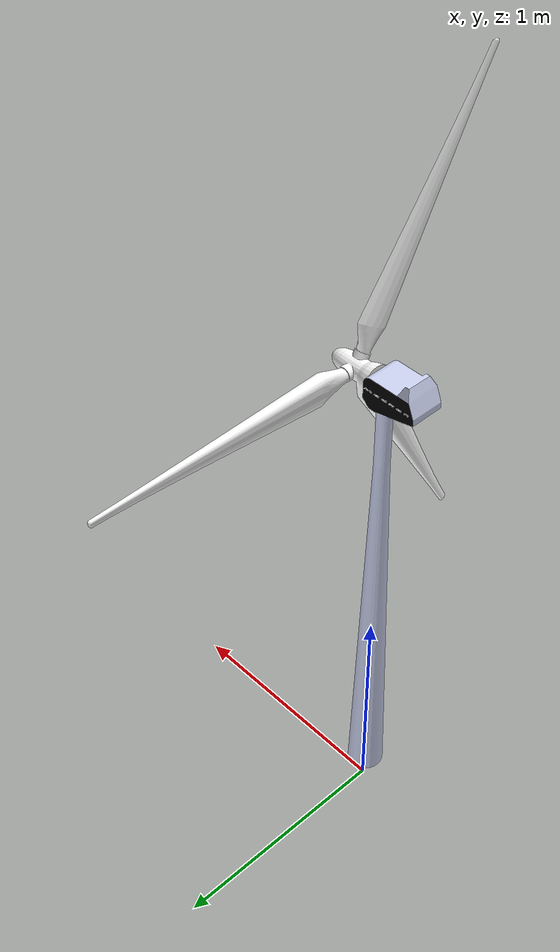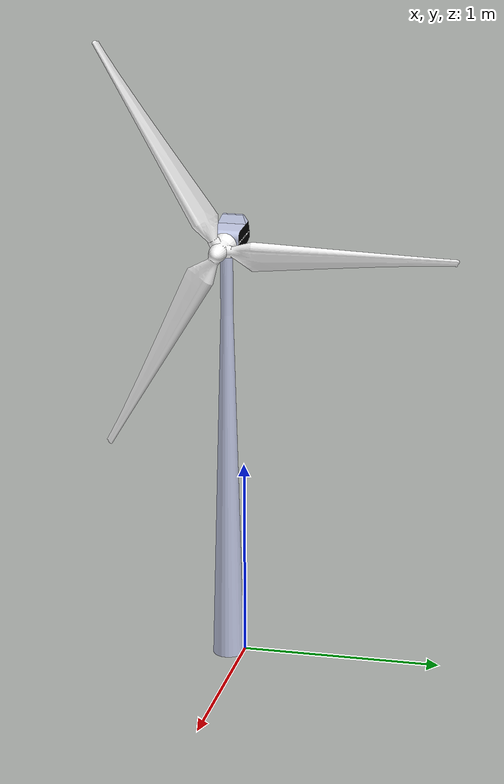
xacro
<?xml version="1.0"?>

<robot name="wind_turbine" xmlns:xacro="http://ros.org/wiki/xacro">
  <xacro:property name="PI" value="3.14" />

  <link name="world"></link>

    <!--LINK1 wind_turbine base-->
    <link name='link_wind_turbine_base'>

      <inertial>
        <mass value="50" />
        <origin rpy="0 0 0" xyz="0 0 0"/>
        <inertia
          ixx="6.71747915" ixy="0.00002148" ixz="-0.00000024"
          iyx="0.00002148" iyy="0.03933251" iyz="-0.17180670"
          izx="-0.00000024" izy="0" izz="6.71747915"/>
      </inertial>

      <visual>
        <origin xyz="0 0 0" rpy="0 0 0" />
        <geometry>
          <mesh filename="package://bebop_simulator/meshes/wind_turbine_base.dae"
            scale="2 2 2" />
        </geometry>
      </visual>

      <collision name='collision'>
        <origin xyz="0 0 0" rpy="0 0 0"/>
        <geometry>
          <mesh filename="package://bebop_simulator/meshes/wind_turbine_base.dae"
            scale="2 2 2" />
        </geometry>
      </collision>
    </link>

    <!--LINK2 wind_turbine rotor-->
    <link name='link_wind_turbine_rotor'>

      <inertial>
        <mass value="10" />
        <origin rpy="0 0 0" xyz="0 0 0"/>
        <inertia
          ixx="0.24721438" ixy="0.00007284" ixz="0.00000045"
          iyx="0.00007284" iyy="0.24718850" iyz="0.00000183"
          izx="0.00000045" izy="0.00000183" izz="0.49126955"/>
      </inertial>

      <visual>
        <origin xyz="0.16228 -0.00566 0.1" rpy="0 0 0" />
        <geometry>
          <mesh filename="package://bebop_simulator/meshes/wind_turbine_rotor.dae"
            scale="2 2 2" />
        </geometry>
      </visual>

      <collision name='collision'>
        <origin xyz="0.16228 -0.00566 0.1" rpy="0 0 0"/>
        <geometry>
          <mesh filename="package://bebop_simultor/meshes/wind_turbine_rotor.dae"
            scale="2 2 2" />
        </geometry>
      </collision>
    </link>

    <!--JOINT1 FIXED wind_turbine base-->
    <joint name="joint_wind_turbine_base" type="fixed">
        <origin xyz="0 0 2.166" rpy="${PI/2} 0 0"/>
        <parent link="world"/>
        <child link="link_wind_turbine_base"/>
    </joint>
    <!--JOINT2 FIXED force_sensor_mount_top-->
    <joint name="joint_wind_turbine_rotor" type="continuous">
        <origin xyz="0.10024 0.0005 0.07" rpy="0 ${PI/2} 0" />
        <parent link="link_wind_turbine_base"/>
        <child link="link_wind_turbine_rotor"/>
        <axis xyz="0 0 1" />
    </joint>

    <transmission name="transmission_wind_turbine">
      <type>transmission_interface/SimpleTransmission</type>
      <joint name="joint_wind_turbine_rotor">
         <hardwareInterface>hardware_interface/EffortJointInterface</hardwareInterface>
      </joint>
      <actuator name="motor_wind_turbine">
        <hardwareInterface>hardware_interface/EffortJointInterface</hardwareInterface>
        <mechanicalReduction>1</mechanicalReduction>
      </actuator>
    </transmission>

</robot>
